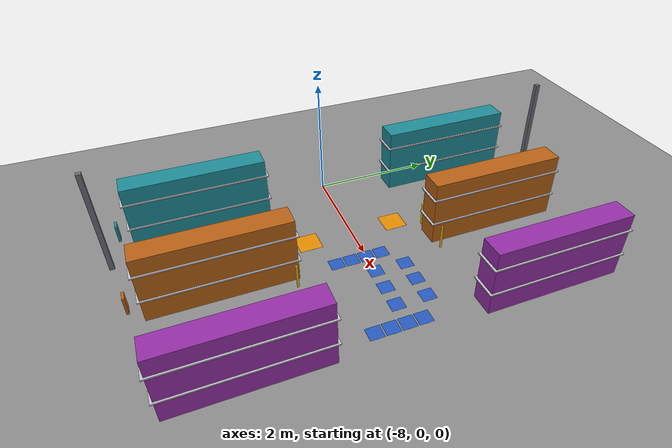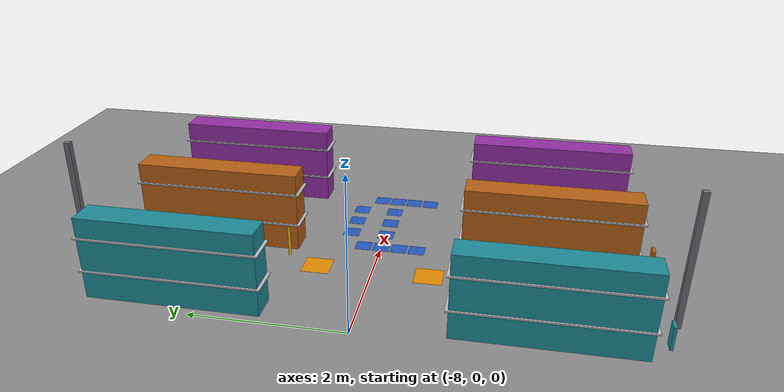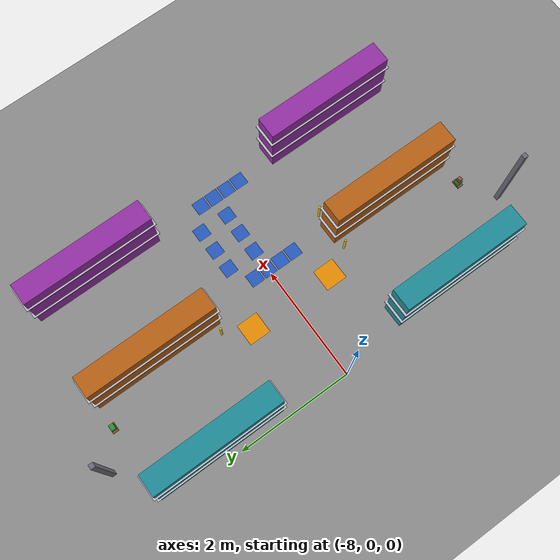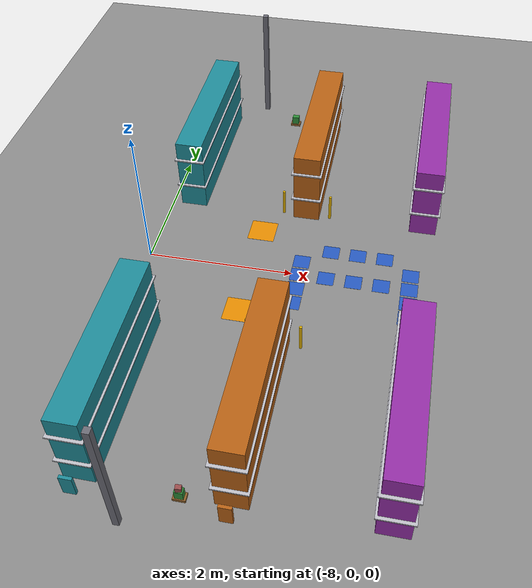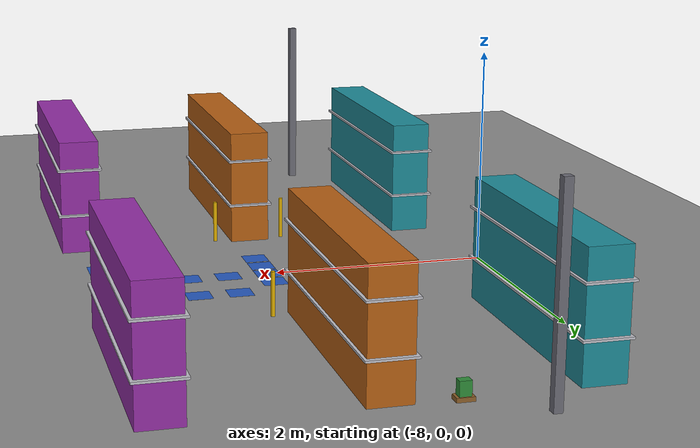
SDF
<sdf version="1.9">
 <world name="industrial_warehouse_large">
  <model name="ground_plane">
   <static>true</static>
   <pose>-0.46875 0 0 0 0 0</pose>
   <link name="link">
    <collision name="col">
     <geometry><plane><normal>0 0 1</normal><size>50 50</size></plane></geometry>
     <surface><friction><ode><mu>1.8</mu><mu2>1.8</mu2></ode></friction></surface>
    </collision>
    <visual name="vis">
     <geometry><plane><normal>0 0 1</normal><size>24.1875 9.5</size></plane></geometry>
     <material><ambient>0.55 0.55 0.55 1</ambient><diffuse>0.55 0.55 0.55 1</diffuse></material>
    </visual>
   </link>
  </model>
  <model name="pillar_3">
   <static>true</static>
   <pose>-7.125 3.75 0.875 0 0 0</pose>
   <link name="link">
    <collision name="col"><geometry><box><size>0.075 0.075 1.75</size></box></geometry></collision>
    <visual name="vis">
     <geometry><box><size>0.075 0.075 1.75</size></box></geometry>
     <material><ambient>0.42 0.42 0.46 1</ambient><diffuse>0.42 0.42 0.46 1</diffuse></material>
    </visual>
   </link>
  </model>
  <model name="pillar_4">
   <static>true</static>
   <pose>-7.125 -3.75 0.875 0 0 0</pose>
   <link name="link">
    <collision name="col"><geometry><box><size>0.075 0.075 1.75</size></box></geometry></collision>
    <visual name="vis">
     <geometry><box><size>0.075 0.075 1.75</size></box></geometry>
     <material><ambient>0.42 0.42 0.46 1</ambient><diffuse>0.42 0.42 0.46 1</diffuse></material>
    </visual>
   </link>
  </model>
  <model name="rack_rC_n">
   <static>true</static>
   <pose>-7.6875 2.25 0.55 0 0 0</pose>
   <link name="link">
    <collision name="col"><geometry><box><size>0.375 2.25 1.1</size></box></geometry></collision>
    <visual name="vis">
     <geometry><box><size>0.375 2.25 1.1</size></box></geometry>
     <material><ambient>0.12 0.55 0.60 1</ambient><diffuse>0.12 0.55 0.60 1</diffuse></material>
    </visual>
   </link>
  </model>
  <model name="rack_rC_s">
   <static>true</static>
   <pose>-7.6875 -2.25 0.55 0 0 0</pose>
   <link name="link">
    <collision name="col"><geometry><box><size>0.375 2.25 1.1</size></box></geometry></collision>
    <visual name="vis">
     <geometry><box><size>0.375 2.25 1.1</size></box></geometry>
     <material><ambient>0.12 0.55 0.60 1</ambient><diffuse>0.12 0.55 0.60 1</diffuse></material>
    </visual>
   </link>
  </model>
  <model name="rack_rD_n">
   <static>true</static>
   <pose>-6 2.25 0.55 0 0 0</pose>
   <link name="link">
    <collision name="col"><geometry><box><size>0.375 2.25 1.1</size></box></geometry></collision>
    <visual name="vis">
     <geometry><box><size>0.375 2.25 1.1</size></box></geometry>
     <material><ambient>0.72 0.38 0.08 1</ambient><diffuse>0.72 0.38 0.08 1</diffuse></material>
    </visual>
   </link>
  </model>
  <model name="rack_rD_s">
   <static>true</static>
   <pose>-6 -2.25 0.55 0 0 0</pose>
   <link name="link">
    <collision name="col"><geometry><box><size>0.375 2.25 1.1</size></box></geometry></collision>
    <visual name="vis">
     <geometry><box><size>0.375 2.25 1.1</size></box></geometry>
     <material><ambient>0.72 0.38 0.08 1</ambient><diffuse>0.72 0.38 0.08 1</diffuse></material>
    </visual>
   </link>
  </model>
  <model name="rack_rE_n">
   <static>true</static>
   <pose>-4.3125 2.25 0.55 0 0 0</pose>
   <link name="link">
    <collision name="col"><geometry><box><size>0.375 2.25 1.1</size></box></geometry></collision>
    <visual name="vis">
     <geometry><box><size>0.375 2.25 1.1</size></box></geometry>
     <material><ambient>0.58 0.18 0.65 1</ambient><diffuse>0.58 0.18 0.65 1</diffuse></material>
    </visual>
   </link>
  </model>
  <model name="rack_rE_s">
   <static>true</static>
   <pose>-4.3125 -2.25 0.55 0 0 0</pose>
   <link name="link">
    <collision name="col"><geometry><box><size>0.375 2.25 1.1</size></box></geometry></collision>
    <visual name="vis">
     <geometry><box><size>0.375 2.25 1.1</size></box></geometry>
     <material><ambient>0.58 0.18 0.65 1</ambient><diffuse>0.58 0.18 0.65 1</diffuse></material>
    </visual>
   </link>
  </model>
  <model name="boll_rD_nw">
   <static>true</static>
   <pose>-6.3375 1.2 0.2 0 0 0</pose>
   <link name="link">
    <collision name="col">
     <geometry><cylinder><radius>0.01875</radius><length>0.4</length></cylinder></geometry>
    </collision>
    <visual name="vis">
     <geometry><cylinder><radius>0.01875</radius><length>0.4</length></cylinder></geometry>
     <material><ambient>0.9 0.7 0.0 1</ambient><diffuse>0.9 0.7 0.0 1</diffuse></material>
    </visual>
   </link>
  </model>
  <model name="boll_rD_sw">
   <static>true</static>
   <pose>-6.3375 -1.2 0.2 0 0 0</pose>
   <link name="link">
    <collision name="col">
     <geometry><cylinder><radius>0.01875</radius><length>0.4</length></cylinder></geometry>
    </collision>
    <visual name="vis">
     <geometry><cylinder><radius>0.01875</radius><length>0.4</length></cylinder></geometry>
     <material><ambient>0.9 0.7 0.0 1</ambient><diffuse>0.9 0.7 0.0 1</diffuse></material>
    </visual>
   </link>
  </model>
  <model name="boll_rD_ne">
   <static>true</static>
   <pose>-5.6625 1.2 0.2 0 0 0</pose>
   <link name="link">
    <collision name="col">
     <geometry><cylinder><radius>0.01875</radius><length>0.4</length></cylinder></geometry>
    </collision>
    <visual name="vis">
     <geometry><cylinder><radius>0.01875</radius><length>0.4</length></cylinder></geometry>
     <material><ambient>0.9 0.7 0.0 1</ambient><diffuse>0.9 0.7 0.0 1</diffuse></material>
    </visual>
   </link>
  </model>
  <model name="boll_rD_se">
   <static>true</static>
   <pose>-5.6625 -1.2 0.2 0 0 0</pose>
   <link name="link">
    <collision name="col">
     <geometry><cylinder><radius>0.01875</radius><length>0.4</length></cylinder></geometry>
    </collision>
    <visual name="vis">
     <geometry><cylinder><radius>0.01875</radius><length>0.4</length></cylinder></geometry>
     <material><ambient>0.9 0.7 0.0 1</ambient><diffuse>0.9 0.7 0.0 1</diffuse></material>
    </visual>
   </link>
  </model>
  <model name="pallet_4">
   <static>true</static>
   <pose>-6.5625 3.375 0.01875 0 0 0</pose>
   <link name="link">
    <collision name="col"><geometry><box><size>0.15 0.1 0.0375</size></box></geometry></collision>
    <visual name="vis">
     <geometry><box><size>0.15 0.1 0.0375</size></box></geometry>
     <material><ambient>0.55 0.37 0.16 1</ambient><diffuse>0.55 0.37 0.16 1</diffuse></material>
    </visual>
   </link>
  </model>
  <model name="box_4">
   <static>true</static>
   <pose>-6.5625 3.375 0.1 0 0 0</pose>
   <link name="link">
    <collision name="col"><geometry><box><size>0.1 0.075 0.125</size></box></geometry></collision>
    <visual name="vis">
     <geometry><box><size>0.1 0.075 0.125</size></box></geometry>
     <material><ambient>0.18 0.55 0.22 1</ambient><diffuse>0.18 0.55 0.22 1</diffuse></material>
    </visual>
   </link>
  </model>
  <model name="pallet_5">
   <static>true</static>
   <pose>-6.5625 -3.375 0.01875 0 0 0</pose>
   <link name="link">
    <collision name="col"><geometry><box><size>0.15 0.1 0.0375</size></box></geometry></collision>
    <visual name="vis">
     <geometry><box><size>0.15 0.1 0.0375</size></box></geometry>
     <material><ambient>0.55 0.37 0.16 1</ambient><diffuse>0.55 0.37 0.16 1</diffuse></material>
    </visual>
   </link>
  </model>
  <model name="box_5">
   <static>true</static>
   <pose>-6.5625 -3.375 0.1 0 0 0</pose>
   <link name="link">
    <collision name="col"><geometry><box><size>0.1 0.075 0.125</size></box></geometry></collision>
    <visual name="vis">
     <geometry><box><size>0.1 0.075 0.125</size></box></geometry>
     <material><ambient>0.18 0.55 0.22 1</ambient><diffuse>0.18 0.55 0.22 1</diffuse></material>
    </visual>
   </link>
  </model>
  <model name="station_C">
   <static>true</static>
   <pose>-6.5625 -0.75 0.00025 0 0 0</pose>
   <link name="link">
    <visual name="vis">
     <geometry><box><size>0.375 0.375 0.0005</size></box></geometry>
     <material><ambient>0.9 0.55 0.0 1</ambient><diffuse>0.9 0.55 0.0 1</diffuse></material>
    </visual>
   </link>
  </model>
  <model name="station_D">
   <static>true</static>
   <pose>-6.5625 0.75 0.00025 0 0 0</pose>
   <link name="link">
    <visual name="vis">
     <geometry><box><size>0.375 0.375 0.0005</size></box></geometry>
     <material><ambient>0.9 0.55 0.0 1</ambient><diffuse>0.9 0.55 0.0 1</diffuse></material>
    </visual>
   </link>
  </model>
  <model name="shelf_rC_n_lo">
   <static>true</static>
   <pose>-7.6875 2.25 0.375 0 0 0</pose>
   <link name="link">
    <collision name="col"><geometry><box><size>0.425 2.325 0.02</size></box></geometry></collision>
    <visual name="vis">
     <geometry><box><size>0.425 2.325 0.02</size></box></geometry>
     <material><ambient>0.75 0.75 0.78 1</ambient><diffuse>0.75 0.75 0.78 1</diffuse></material>
    </visual>
   </link>
  </model>
  <model name="shelf_rC_n_hi">
   <static>true</static>
   <pose>-7.6875 2.25 0.825 0 0 0</pose>
   <link name="link">
    <collision name="col"><geometry><box><size>0.425 2.325 0.02</size></box></geometry></collision>
    <visual name="vis">
     <geometry><box><size>0.425 2.325 0.02</size></box></geometry>
     <material><ambient>0.75 0.75 0.78 1</ambient><diffuse>0.75 0.75 0.78 1</diffuse></material>
    </visual>
   </link>
  </model>
  <model name="shelf_rC_s_lo">
   <static>true</static>
   <pose>-7.6875 -2.25 0.375 0 0 0</pose>
   <link name="link">
    <collision name="col"><geometry><box><size>0.425 2.325 0.02</size></box></geometry></collision>
    <visual name="vis">
     <geometry><box><size>0.425 2.325 0.02</size></box></geometry>
     <material><ambient>0.75 0.75 0.78 1</ambient><diffuse>0.75 0.75 0.78 1</diffuse></material>
    </visual>
   </link>
  </model>
  <model name="shelf_rC_s_hi">
   <static>true</static>
   <pose>-7.6875 -2.25 0.825 0 0 0</pose>
   <link name="link">
    <collision name="col"><geometry><box><size>0.425 2.325 0.02</size></box></geometry></collision>
    <visual name="vis">
     <geometry><box><size>0.425 2.325 0.02</size></box></geometry>
     <material><ambient>0.75 0.75 0.78 1</ambient><diffuse>0.75 0.75 0.78 1</diffuse></material>
    </visual>
   </link>
  </model>
  <model name="shelf_rD_n_lo">
   <static>true</static>
   <pose>-6 2.25 0.375 0 0 0</pose>
   <link name="link">
    <collision name="col"><geometry><box><size>0.425 2.325 0.02</size></box></geometry></collision>
    <visual name="vis">
     <geometry><box><size>0.425 2.325 0.02</size></box></geometry>
     <material><ambient>0.75 0.75 0.78 1</ambient><diffuse>0.75 0.75 0.78 1</diffuse></material>
    </visual>
   </link>
  </model>
  <model name="shelf_rD_n_hi">
   <static>true</static>
   <pose>-6 2.25 0.825 0 0 0</pose>
   <link name="link">
    <collision name="col"><geometry><box><size>0.425 2.325 0.02</size></box></geometry></collision>
    <visual name="vis">
     <geometry><box><size>0.425 2.325 0.02</size></box></geometry>
     <material><ambient>0.75 0.75 0.78 1</ambient><diffuse>0.75 0.75 0.78 1</diffuse></material>
    </visual>
   </link>
  </model>
  <model name="shelf_rD_s_lo">
   <static>true</static>
   <pose>-6 -2.25 0.375 0 0 0</pose>
   <link name="link">
    <collision name="col"><geometry><box><size>0.425 2.325 0.02</size></box></geometry></collision>
    <visual name="vis">
     <geometry><box><size>0.425 2.325 0.02</size></box></geometry>
     <material><ambient>0.75 0.75 0.78 1</ambient><diffuse>0.75 0.75 0.78 1</diffuse></material>
    </visual>
   </link>
  </model>
  <model name="shelf_rD_s_hi">
   <static>true</static>
   <pose>-6 -2.25 0.825 0 0 0</pose>
   <link name="link">
    <collision name="col"><geometry><box><size>0.425 2.325 0.02</size></box></geometry></collision>
    <visual name="vis">
     <geometry><box><size>0.425 2.325 0.02</size></box></geometry>
     <material><ambient>0.75 0.75 0.78 1</ambient><diffuse>0.75 0.75 0.78 1</diffuse></material>
    </visual>
   </link>
  </model>
  <model name="shelf_rE_n_lo">
   <static>true</static>
   <pose>-4.3125 2.25 0.375 0 0 0</pose>
   <link name="link">
    <collision name="col"><geometry><box><size>0.425 2.325 0.02</size></box></geometry></collision>
    <visual name="vis">
     <geometry><box><size>0.425 2.325 0.02</size></box></geometry>
     <material><ambient>0.75 0.75 0.78 1</ambient><diffuse>0.75 0.75 0.78 1</diffuse></material>
    </visual>
   </link>
  </model>
  <model name="shelf_rE_n_hi">
   <static>true</static>
   <pose>-4.3125 2.25 0.825 0 0 0</pose>
   <link name="link">
    <collision name="col"><geometry><box><size>0.425 2.325 0.02</size></box></geometry></collision>
    <visual name="vis">
     <geometry><box><size>0.425 2.325 0.02</size></box></geometry>
     <material><ambient>0.75 0.75 0.78 1</ambient><diffuse>0.75 0.75 0.78 1</diffuse></material>
    </visual>
   </link>
  </model>
  <model name="shelf_rE_s_lo">
   <static>true</static>
   <pose>-4.3125 -2.25 0.375 0 0 0</pose>
   <link name="link">
    <collision name="col"><geometry><box><size>0.425 2.325 0.02</size></box></geometry></collision>
    <visual name="vis">
     <geometry><box><size>0.425 2.325 0.02</size></box></geometry>
     <material><ambient>0.75 0.75 0.78 1</ambient><diffuse>0.75 0.75 0.78 1</diffuse></material>
    </visual>
   </link>
  </model>
  <model name="shelf_rE_s_hi">
   <static>true</static>
   <pose>-4.3125 -2.25 0.825 0 0 0</pose>
   <link name="link">
    <collision name="col"><geometry><box><size>0.425 2.325 0.02</size></box></geometry></collision>
    <visual name="vis">
     <geometry><box><size>0.425 2.325 0.02</size></box></geometry>
     <material><ambient>0.75 0.75 0.78 1</ambient><diffuse>0.75 0.75 0.78 1</diffuse></material>
    </visual>
   </link>
  </model>
  <model name="sign_row_C">
   <static>true</static>
   <pose>-7.6875 -3.575 0.25 0 0 0</pose>
   <link name="link">
    <collision name="col"><geometry><box><size>0.15 0.0375 0.3</size></box></geometry></collision>
    <visual name="vis">
     <geometry><box><size>0.15 0.0375 0.3</size></box></geometry>
     <material><ambient>0.12 0.55 0.60 1</ambient><diffuse>0.12 0.55 0.60 1</diffuse></material>
    </visual>
   </link>
  </model>
  <model name="sign_row_D">
   <static>true</static>
   <pose>-6 -3.575 0.25 0 0 0</pose>
   <link name="link">
    <collision name="col"><geometry><box><size>0.15 0.0375 0.3</size></box></geometry></collision>
    <visual name="vis">
     <geometry><box><size>0.15 0.0375 0.3</size></box></geometry>
     <material><ambient>0.72 0.38 0.08 1</ambient><diffuse>0.72 0.38 0.08 1</diffuse></material>
    </visual>
   </link>
  </model>
  <model name="room_label_A_px1">
   <static>true</static>
   <pose>-5.53125 0.5 0.00025 0 0 0</pose>
   <link name="link">
    <visual name="vis">
     <geometry><box><size>0.225 0.225 0.0005</size></box></geometry>
     <material><ambient>0.15 0.35 0.75 1</ambient><diffuse>0.15 0.35 0.75 1</diffuse></material>
    </visual>
   </link>
  </model>
  <model name="room_label_A_px2">
   <static>true</static>
   <pose>-5.15625 0.5 0.00025 0 0 0</pose>
   <link name="link">
    <visual name="vis">
     <geometry><box><size>0.225 0.225 0.0005</size></box></geometry>
     <material><ambient>0.15 0.35 0.75 1</ambient><diffuse>0.15 0.35 0.75 1</diffuse></material>
    </visual>
   </link>
  </model>
  <model name="room_label_A_px3">
   <static>true</static>
   <pose>-4.78125 0.5 0.00025 0 0 0</pose>
   <link name="link">
    <visual name="vis">
     <geometry><box><size>0.225 0.225 0.0005</size></box></geometry>
     <material><ambient>0.15 0.35 0.75 1</ambient><diffuse>0.15 0.35 0.75 1</diffuse></material>
    </visual>
   </link>
  </model>
  <model name="room_label_A_px4">
   <static>true</static>
   <pose>-5.90625 0.25 0.00025 0 0 0</pose>
   <link name="link">
    <visual name="vis">
     <geometry><box><size>0.225 0.225 0.0005</size></box></geometry>
     <material><ambient>0.15 0.35 0.75 1</ambient><diffuse>0.15 0.35 0.75 1</diffuse></material>
    </visual>
   </link>
  </model>
  <model name="room_label_A_px5">
   <static>true</static>
   <pose>-4.40625 0.25 0.00025 0 0 0</pose>
   <link name="link">
    <visual name="vis">
     <geometry><box><size>0.225 0.225 0.0005</size></box></geometry>
     <material><ambient>0.15 0.35 0.75 1</ambient><diffuse>0.15 0.35 0.75 1</diffuse></material>
    </visual>
   </link>
  </model>
  <model name="room_label_A_px6">
   <static>true</static>
   <pose>-5.90625 0 0.00025 0 0 0</pose>
   <link name="link">
    <visual name="vis">
     <geometry><box><size>0.225 0.225 0.0005</size></box></geometry>
     <material><ambient>0.15 0.35 0.75 1</ambient><diffuse>0.15 0.35 0.75 1</diffuse></material>
    </visual>
   </link>
  </model>
  <model name="room_label_A_px7">
   <static>true</static>
   <pose>-5.53125 0 0.00025 0 0 0</pose>
   <link name="link">
    <visual name="vis">
     <geometry><box><size>0.225 0.225 0.0005</size></box></geometry>
     <material><ambient>0.15 0.35 0.75 1</ambient><diffuse>0.15 0.35 0.75 1</diffuse></material>
    </visual>
   </link>
  </model>
  <model name="room_label_A_px8">
   <static>true</static>
   <pose>-5.15625 0 0.00025 0 0 0</pose>
   <link name="link">
    <visual name="vis">
     <geometry><box><size>0.225 0.225 0.0005</size></box></geometry>
     <material><ambient>0.15 0.35 0.75 1</ambient><diffuse>0.15 0.35 0.75 1</diffuse></material>
    </visual>
   </link>
  </model>
  <model name="room_label_A_px9">
   <static>true</static>
   <pose>-4.78125 0 0.00025 0 0 0</pose>
   <link name="link">
    <visual name="vis">
     <geometry><box><size>0.225 0.225 0.0005</size></box></geometry>
     <material><ambient>0.15 0.35 0.75 1</ambient><diffuse>0.15 0.35 0.75 1</diffuse></material>
    </visual>
   </link>
  </model>
  <model name="room_label_A_px10">
   <static>true</static>
   <pose>-4.40625 0 0.00025 0 0 0</pose>
   <link name="link">
    <visual name="vis">
     <geometry><box><size>0.225 0.225 0.0005</size></box></geometry>
     <material><ambient>0.15 0.35 0.75 1</ambient><diffuse>0.15 0.35 0.75 1</diffuse></material>
    </visual>
   </link>
  </model>
  <model name="room_label_A_px11">
   <static>true</static>
   <pose>-5.90625 -0.25 0.00025 0 0 0</pose>
   <link name="link">
    <visual name="vis">
     <geometry><box><size>0.225 0.225 0.0005</size></box></geometry>
     <material><ambient>0.15 0.35 0.75 1</ambient><diffuse>0.15 0.35 0.75 1</diffuse></material>
    </visual>
   </link>
  </model>
  <model name="room_label_A_px12">
   <static>true</static>
   <pose>-4.40625 -0.25 0.00025 0 0 0</pose>
   <link name="link">
    <visual name="vis">
     <geometry><box><size>0.225 0.225 0.0005</size></box></geometry>
     <material><ambient>0.15 0.35 0.75 1</ambient><diffuse>0.15 0.35 0.75 1</diffuse></material>
    </visual>
   </link>
  </model>
  <model name="room_label_A_px13">
   <static>true</static>
   <pose>-5.90625 -0.5 0.00025 0 0 0</pose>
   <link name="link">
    <visual name="vis">
     <geometry><box><size>0.225 0.225 0.0005</size></box></geometry>
     <material><ambient>0.15 0.35 0.75 1</ambient><diffuse>0.15 0.35 0.75 1</diffuse></material>
    </visual>
   </link>
  </model>
  <model name="room_label_A_px14">
   <static>true</static>
   <pose>-4.40625 -0.5 0.00025 0 0 0</pose>
   <link name="link">
    <visual name="vis">
     <geometry><box><size>0.225 0.225 0.0005</size></box></geometry>
     <material><ambient>0.15 0.35 0.75 1</ambient><diffuse>0.15 0.35 0.75 1</diffuse></material>
    </visual>
   </link>
  </model>
  <model name="crate_extra_3">
   <static>true</static>
   <pose>-6.5625 -3.375 0.195 0 0 0.15</pose>
   <link name="link">
    <collision name="col"><geometry><box><size>0.07 0.055 0.07</size></box></geometry></collision>
    <visual name="vis">
     <geometry><box><size>0.07 0.055 0.07</size></box></geometry>
     <material><ambient>0.6 0.3 0.3 1</ambient><diffuse>0.6 0.3 0.3 1</diffuse></material>
    </visual>
   </link>
  </model>
 </world>
</sdf>
